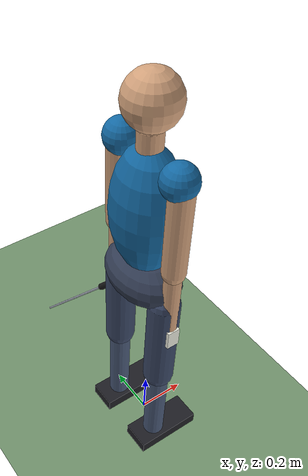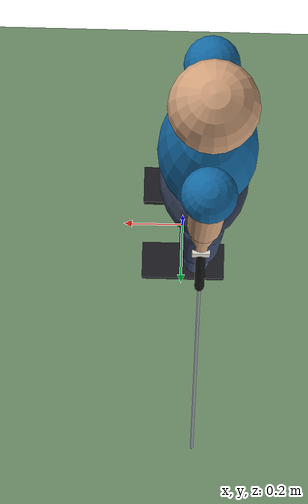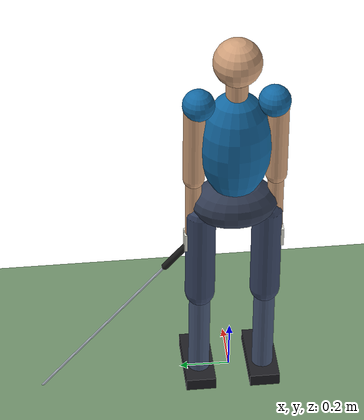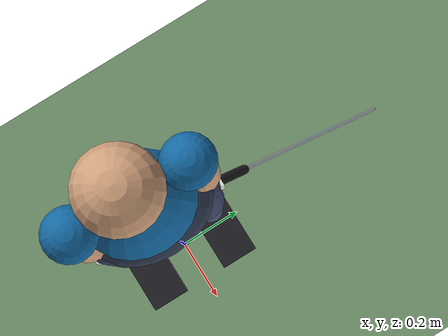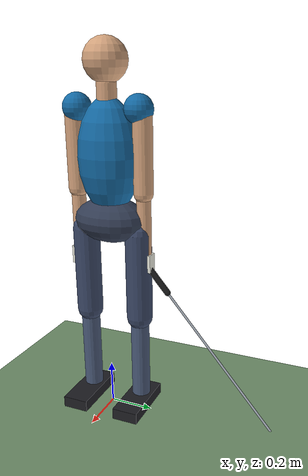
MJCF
<?xml version='1.0' encoding='utf-8'?>
<mujoco model="golfista_dinamico">
    <compiler angle="degree" autolimits="true" />
    <option timestep=".001" gravity="0 0 -9.81" integrator="implicitfast" iterations="100" tolerance="1e-10" cone="elliptic" />
    <statistic center="0.15 0 0.9" extent="2.4" />
    <visual>
        <global offwidth="1280" offheight="960" />
    </visual>
    <default>
        <joint damping="1" armature=".015" />
        <geom contype="0" conaffinity="0" rgba=".83 .64 .49 1" />
    </default>
    <worldbody>
        <light pos="1 -3 4" dir="-0.2 0.5 -1" />
        <light pos="-2 2 3" diffuse=".5 .5 .5" />
        <geom name="chao" type="plane" size="4 4 .1" rgba=".45 .58 .43 1" contype="1" conaffinity="6" friction=".9 .01 .001" condim="6" solref=".01 1" />
        <body name="pelvis" pos="-.05 0 .90">
            <freejoint name="base_livre" />
            <geom name="pelvis_geom" type="ellipsoid" size=".12 .17 .10" mass="10" rgba=".2 .24 .33 1" />
            <body name="coxa_esq" pos="0 0.13 -.05">
                <joint name="anca_esq_yaw" type="hinge" axis="0 0 1" range="-50 50" />
                <joint name="anca_esq_roll" type="hinge" axis="1 0 0" range="-45 45" />
                <joint name="anca_esq_pitch" type="hinge" axis="0 1 0" range="-110 50" />
                <geom type="capsule" fromto="0 0 0 0 0 -.40" size=".06" mass="7" rgba=".23 .28 .40 1" />
                <body name="canela_esq" pos="0 0 -.40">
                    <joint name="joelho_esq" type="hinge" axis="0 1 0" range="0 145" />
                    <geom type="capsule" fromto="0 0 0 0 0 -.40" size=".043" mass="3.5" rgba=".29 .35 .47 1" />
                    <body name="pe_esq" pos="0 0 -.40">
                        <joint name="tornozelo_esq_pitch" type="hinge" axis="0 1 0" range="-50 40" />
                        <joint name="tornozelo_esq_roll" type="hinge" axis="1 0 0" range="-30 30" />
                        <geom name="sola_esq" type="box" pos=".045 0 -.045" size=".14 .06 .045" mass="1" rgba=".12 .12 .14 1" contype="2" conaffinity="1" condim="6" friction=".9 .01 .001" solref=".01 1" />
                        <site name="apoio_esq" pos=".045 0 -.09" size=".007" rgba="1 .8 0 1" />
                    </body>
                </body>
            </body>
            <body name="coxa_dir" pos="0 -0.13 -.05">
                <joint name="anca_dir_yaw" type="hinge" axis="0 0 1" range="-50 50" />
                <joint name="anca_dir_roll" type="hinge" axis="1 0 0" range="-45 45" />
                <joint name="anca_dir_pitch" type="hinge" axis="0 1 0" range="-110 50" />
                <geom type="capsule" fromto="0 0 0 0 0 -.40" size=".06" mass="7" rgba=".23 .28 .40 1" />
                <body name="canela_dir" pos="0 0 -.40">
                    <joint name="joelho_dir" type="hinge" axis="0 1 0" range="0 145" />
                    <geom type="capsule" fromto="0 0 0 0 0 -.40" size=".043" mass="3.5" rgba=".29 .35 .47 1" />
                    <body name="pe_dir" pos="0 0 -.40">
                        <joint name="tornozelo_dir_pitch" type="hinge" axis="0 1 0" range="-50 40" />
                        <joint name="tornozelo_dir_roll" type="hinge" axis="1 0 0" range="-30 30" />
                        <geom name="sola_dir" type="box" pos=".045 0 -.045" size=".14 .06 .045" mass="1" rgba=".12 .12 .14 1" contype="2" conaffinity="1" condim="6" friction=".9 .01 .001" solref=".01 1" />
                        <site name="apoio_dir" pos=".045 0 -.09" size=".007" rgba="1 .8 0 1" />
                    </body>
                </body>
            </body>
            <body name="tronco" pos="0 0 .08">
                <joint name="tronco_yaw" type="hinge" axis="0 0 1" range="-70 70" />
                <joint name="tronco_roll" type="hinge" axis="1 0 0" range="-35 35" />
                <joint name="tronco_pitch" type="hinge" axis="0 1 0" range="-25 55" />
                <geom type="ellipsoid" pos="0 0 .20" size=".12 .14 .25" mass="25" rgba=".08 .42 .65 1" />
                <geom type="capsule" fromto="0 0 .43 0 0 .50" size=".043" mass=".5" />
                <geom name="cabeca" type="sphere" pos="0 0 .59" size=".095" mass="4.5" />
                <geom name="ombro_visual_esq" type="sphere" pos="0 0.145 .40" size=".063" mass="0" rgba=".08 .42 .65 1" />
                <body name="braco_esq" pos="0 0.16 .40">
                    <joint name="ombro_esq_pitch" type="hinge" axis="0 -1 0" range="-70 170" />
                    <joint name="ombro_esq_roll" type="hinge" axis="1 0 0" range="-80 150" />
                    <joint name="ombro_esq_axial" type="hinge" axis="0 0 1" range="-100 100" />
                    <geom type="capsule" fromto="0 0 0 0 0 -.35" size=".043" mass="3" name="segmento_braco_esq" />
                    <body name="cotovelo_body_esq" pos="0 0 -.35">
                        <joint name="cotovelo_esq" type="hinge" axis="0 -1 0" range="0 145" />
                        <geom type="sphere" size=".035" mass=".1" name="segmento_cotovelo_body_esq" />
                        <body name="antebraco_esq">
                            <joint name="pronacao_esq" type="hinge" axis="0 0 1" range="-100 100" />
                            <geom type="capsule" fromto="0 0 0 0 0 -.27" size=".032" mass="1.4" name="segmento_antebraco_esq" />
                            <body name="mao_esq" pos="0 0 -.27">
                                <joint name="pulso_esq_flex" type="hinge" axis="0 1 0" range="-80 80" />
                                <joint name="pulso_esq_desvio" type="hinge" axis="1 0 0" range="-40 40" />
                                <geom name="luva_esq" type="box" pos="0 0 -.04" size=".025 .036 .04" mass=".4" rgba=".92 .92 .87 1" />
                                <site name="pega_mao_esq" pos="0 0 -.04" size=".006" rgba="1 .2 .1 1" euler="40 0 0" />
                                <body name="taco" pos="0 0 -.04" euler="40 0 0">
                                    <geom name="punho_taco" type="capsule" fromto="0 0 .035 0 0 -.17" size=".014" mass=".05" rgba=".1 .1 .1 1" />
                                    <geom name="haste_taco" type="capsule" fromto="0 0 -.17 0 0 -1.00" size=".005" mass=".10" rgba=".65 .68 .72 1" contype="4" conaffinity="9" />
                                    <geom name="cabeca_taco" type="box" pos=".025 0 -1.00" size=".055 .027 .022" mass=".20" rgba=".25 .27 .3 1" contype="4" conaffinity="9" solref=".005 1" />
                                    <site name="pega_taco_dir" pos="0 0 -.09" size=".006" rgba=".2 1 .1 1" />
                                    <site name="centro_cabeca_taco" pos=".025 0 -1.00" size=".004" />
                                </body>
                            </body>
                        </body>
                    </body>
                </body>
                <geom name="ombro_visual_dir" type="sphere" pos="0 -0.145 .40" size=".063" mass="0" rgba=".08 .42 .65 1" />
                <body name="braco_dir" pos="0 -0.16 .40">
                    <joint name="ombro_dir_pitch" type="hinge" axis="0 -1 0" range="-70 170" />
                    <joint name="ombro_dir_roll" type="hinge" axis="-1 0 0" range="-80 150" />
                    <joint name="ombro_dir_axial" type="hinge" axis="0 0 1" range="-100 100" />
                    <geom type="capsule" fromto="0 0 0 0 0 -.35" size=".043" mass="3" name="segmento_braco_dir" />
                    <body name="cotovelo_body_dir" pos="0 0 -.35">
                        <joint name="cotovelo_dir" type="hinge" axis="0 -1 0" range="0 145" />
                        <geom type="sphere" size=".035" mass=".1" name="segmento_cotovelo_body_dir" />
                        <body name="antebraco_dir">
                            <joint name="pronacao_dir" type="hinge" axis="0 0 1" range="-100 100" />
                            <geom type="capsule" fromto="0 0 0 0 0 -.27" size=".032" mass="1.4" name="segmento_antebraco_dir" />
                            <body name="mao_dir" pos="0 0 -.27">
                                <joint name="pulso_dir_flex" type="hinge" axis="0 1 0" range="-80 80" />
                                <joint name="pulso_dir_desvio" type="hinge" axis="1 0 0" range="-40 40" />
                                <geom name="luva_dir" type="box" pos="0 0 -.04" size=".025 .036 .04" mass=".4" rgba=".92 .92 .87 1" />
                                <site name="pega_mao_dir" pos="0 0 -.04" size=".006" rgba="1 .2 .1 1" euler="40 0 0" />
                            </body>
                        </body>
                    </body>
                </body>
            </body>
        </body>
        <body name="bola" pos=".7155 -.095 .02135">
            <freejoint name="bola_livre" />
            <geom name="bola_geom" type="sphere" size=".02135" mass=".0459" rgba=".98 .98 .98 1" contype="8" conaffinity="5" condim="6" friction=".35 .001 .0002" solref=".005 1" group="4" />
        </body>
    </worldbody>
    <equality>
        <weld name="pega_direita" site1="pega_mao_dir" site2="pega_taco_dir" solref=".005 1" solimp=".95 .99 .001" torquescale=".2" />
    </equality>
    <actuator>
        <position name="motor_anca_esq_yaw" joint="anca_esq_yaw" gear="1" ctrllimited="true" ctrlrange="-0.8726646259971648 0.8726646259971648" kp="1500.0" kv="80.0" forcelimited="true" forcerange="-150 150" />
        <position name="motor_anca_esq_roll" joint="anca_esq_roll" gear="1" ctrllimited="true" ctrlrange="-0.7853981633974483 0.7853981633974483" kp="1500.0" kv="80.0" forcelimited="true" forcerange="-150 150" />
        <position name="motor_anca_esq_pitch" joint="anca_esq_pitch" gear="1" ctrllimited="true" ctrlrange="-1.9198621771937625 0.8726646259971648" kp="1500.0" kv="80.0" forcelimited="true" forcerange="-180 180" />
        <position name="motor_joelho_esq" joint="joelho_esq" gear="1" ctrllimited="true" ctrlrange="0.0 2.530727415391778" kp="1500.0" kv="70.0" forcelimited="true" forcerange="-150 150" />
        <position name="motor_tornozelo_esq_pitch" joint="tornozelo_esq_pitch" gear="1" ctrllimited="true" ctrlrange="-0.8726646259971648 0.6981317007977318" kp="1200.0" kv="60.0" forcelimited="true" forcerange="-120 120" />
        <position name="motor_tornozelo_esq_roll" joint="tornozelo_esq_roll" gear="1" ctrllimited="true" ctrlrange="-0.5235987755982988 0.5235987755982988" kp="1200.0" kv="60.0" forcelimited="true" forcerange="-90 90" />
        <position name="motor_anca_dir_yaw" joint="anca_dir_yaw" gear="1" ctrllimited="true" ctrlrange="-0.8726646259971648 0.8726646259971648" kp="1500.0" kv="80.0" forcelimited="true" forcerange="-150 150" />
        <position name="motor_anca_dir_roll" joint="anca_dir_roll" gear="1" ctrllimited="true" ctrlrange="-0.7853981633974483 0.7853981633974483" kp="1500.0" kv="80.0" forcelimited="true" forcerange="-150 150" />
        <position name="motor_anca_dir_pitch" joint="anca_dir_pitch" gear="1" ctrllimited="true" ctrlrange="-1.9198621771937625 0.8726646259971648" kp="1500.0" kv="80.0" forcelimited="true" forcerange="-180 180" />
        <position name="motor_joelho_dir" joint="joelho_dir" gear="1" ctrllimited="true" ctrlrange="0.0 2.530727415391778" kp="1500.0" kv="70.0" forcelimited="true" forcerange="-150 150" />
        <position name="motor_tornozelo_dir_pitch" joint="tornozelo_dir_pitch" gear="1" ctrllimited="true" ctrlrange="-0.8726646259971648 0.6981317007977318" kp="1200.0" kv="60.0" forcelimited="true" forcerange="-120 120" />
        <position name="motor_tornozelo_dir_roll" joint="tornozelo_dir_roll" gear="1" ctrllimited="true" ctrlrange="-0.5235987755982988 0.5235987755982988" kp="1200.0" kv="60.0" forcelimited="true" forcerange="-90 90" />
        <position name="motor_tronco_yaw" joint="tronco_yaw" gear="1" ctrllimited="true" ctrlrange="-1.2217304763960306 1.2217304763960306" kp="700.0" kv="45.0" forcelimited="true" forcerange="-120 120" />
        <position name="motor_tronco_roll" joint="tronco_roll" gear="1" ctrllimited="true" ctrlrange="-0.6108652381980153 0.6108652381980153" kp="700.0" kv="45.0" forcelimited="true" forcerange="-120 120" />
        <position name="motor_tronco_pitch" joint="tronco_pitch" gear="1" ctrllimited="true" ctrlrange="-0.4363323129985824 0.9599310885968813" kp="900.0" kv="55.0" forcelimited="true" forcerange="-160 160" />
        <position name="motor_ombro_esq_pitch" joint="ombro_esq_pitch" gear="1" ctrllimited="true" ctrlrange="-1.2217304763960306 2.9670597283903604" kp="450.0" kv="25.0" forcelimited="true" forcerange="-80 80" />
        <position name="motor_ombro_esq_roll" joint="ombro_esq_roll" gear="1" ctrllimited="true" ctrlrange="-1.3962634015954636 2.6179938779914944" kp="450.0" kv="25.0" forcelimited="true" forcerange="-80 80" />
        <position name="motor_ombro_esq_axial" joint="ombro_esq_axial" gear="1" ctrllimited="true" ctrlrange="-1.7453292519943295 1.7453292519943295" kp="250.0" kv="15.0" forcelimited="true" forcerange="-50 50" />
        <position name="motor_cotovelo_esq" joint="cotovelo_esq" gear="1" ctrllimited="true" ctrlrange="0.0 2.530727415391778" kp="250.0" kv="15.0" forcelimited="true" forcerange="-50 50" />
        <position name="motor_pronacao_esq" joint="pronacao_esq" gear="1" ctrllimited="true" ctrlrange="-1.7453292519943295 1.7453292519943295" kp="100.0" kv="6.0" forcelimited="true" forcerange="-20 20" />
        <position name="motor_pulso_esq_flex" joint="pulso_esq_flex" gear="1" ctrllimited="true" ctrlrange="-1.3962634015954636 1.3962634015954636" kp="100.0" kv="6.0" forcelimited="true" forcerange="-20 20" />
        <position name="motor_pulso_esq_desvio" joint="pulso_esq_desvio" gear="1" ctrllimited="true" ctrlrange="-0.6981317007977318 0.6981317007977318" kp="100.0" kv="6.0" forcelimited="true" forcerange="-20 20" />
        <position name="motor_ombro_dir_pitch" joint="ombro_dir_pitch" gear="1" ctrllimited="true" ctrlrange="-1.2217304763960306 2.9670597283903604" kp="450.0" kv="25.0" forcelimited="true" forcerange="-80 80" />
        <position name="motor_ombro_dir_roll" joint="ombro_dir_roll" gear="1" ctrllimited="true" ctrlrange="-1.3962634015954636 2.6179938779914944" kp="450.0" kv="25.0" forcelimited="true" forcerange="-80 80" />
        <position name="motor_ombro_dir_axial" joint="ombro_dir_axial" gear="1" ctrllimited="true" ctrlrange="-1.7453292519943295 1.7453292519943295" kp="250.0" kv="15.0" forcelimited="true" forcerange="-50 50" />
        <position name="motor_cotovelo_dir" joint="cotovelo_dir" gear="1" ctrllimited="true" ctrlrange="0.0 2.530727415391778" kp="250.0" kv="15.0" forcelimited="true" forcerange="-50 50" />
        <position name="motor_pronacao_dir" joint="pronacao_dir" gear="1" ctrllimited="true" ctrlrange="-1.7453292519943295 1.7453292519943295" kp="100.0" kv="6.0" forcelimited="true" forcerange="-20 20" />
        <position name="motor_pulso_dir_flex" joint="pulso_dir_flex" gear="1" ctrllimited="true" ctrlrange="-1.3962634015954636 1.3962634015954636" kp="100.0" kv="6.0" forcelimited="true" forcerange="-20 20" />
        <position name="motor_pulso_dir_desvio" joint="pulso_dir_desvio" gear="1" ctrllimited="true" ctrlrange="-0.6981317007977318 0.6981317007977318" kp="100.0" kv="6.0" forcelimited="true" forcerange="-20 20" />
    </actuator>
    <custom>
        <numeric name="kp" data="1500 1500 1500 1500 1200 1200 1500 1500 1500 1500 1200 1200 700 700 900 450 450 250 250 100 100 100 450 450 250 250 100 100 100" />
        <numeric name="kd" data="80 80 80 70 60 60 80 80 80 70 60 60 45 45 55 25 25 15 15 6 6 6 25 25 15 15 6 6 6" />
    </custom>
    <keyframe>
        <key name="preparacao" qpos="-0.05 0 0.9 1 0 0 0 1.06592938965e-18 0.0918220982 -0.3286827892 0.604981490488 -0.276298701287 -0.0918220982 6.39928357764e-18 -0.0918220982 -0.3286827892 0.604981490488 -0.276298701287 0.0918220982 0 0 0.349065850399 0.360001555338 -0.620861366438 0.0459151497378 1.14647702996 -0.358407694393 0.832558391134 0.310278440231 0.726051744609 -0.506042720274 -0.359281764433 0.428164837228 0.381114900346 0.425447649001 -0.351104087394 0.7155 -0.095 0.02135 1 0 0 0" />
    </keyframe>
    <contact>
        <pair geom1="cabeca" geom2="segmento_braco_esq" condim="3" solref=".01 1" />
        <pair geom1="cabeca" geom2="segmento_cotovelo_body_esq" condim="3" solref=".01 1" />
        <pair geom1="cabeca" geom2="segmento_antebraco_esq" condim="3" solref=".01 1" />
        <pair geom1="cabeca" geom2="luva_esq" condim="3" solref=".01 1" />
        <pair geom1="cabeca" geom2="segmento_braco_dir" condim="3" solref=".01 1" />
        <pair geom1="cabeca" geom2="segmento_cotovelo_body_dir" condim="3" solref=".01 1" />
        <pair geom1="cabeca" geom2="segmento_antebraco_dir" condim="3" solref=".01 1" />
        <pair geom1="cabeca" geom2="luva_dir" condim="3" solref=".01 1" />
    </contact>
</mujoco>
